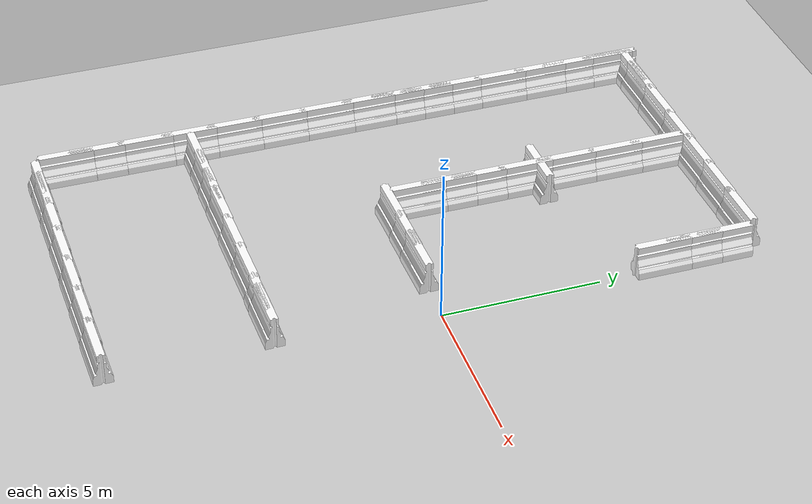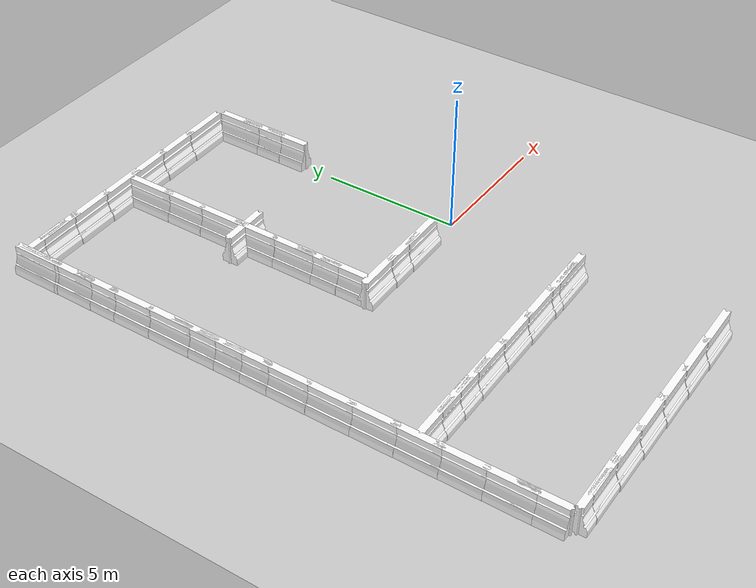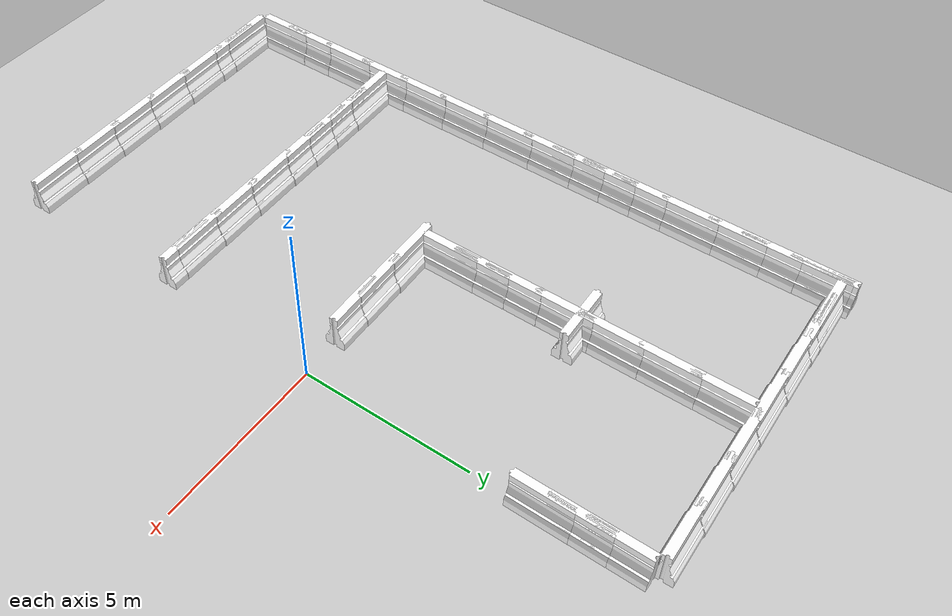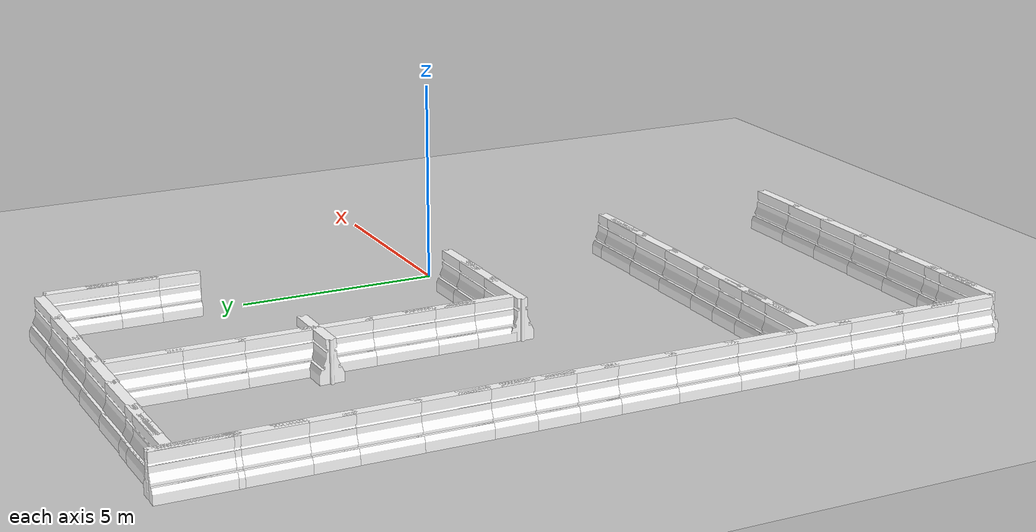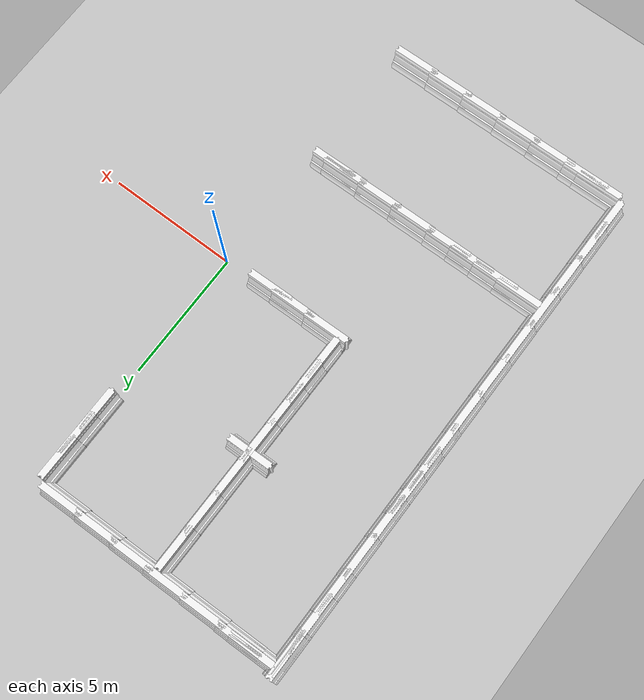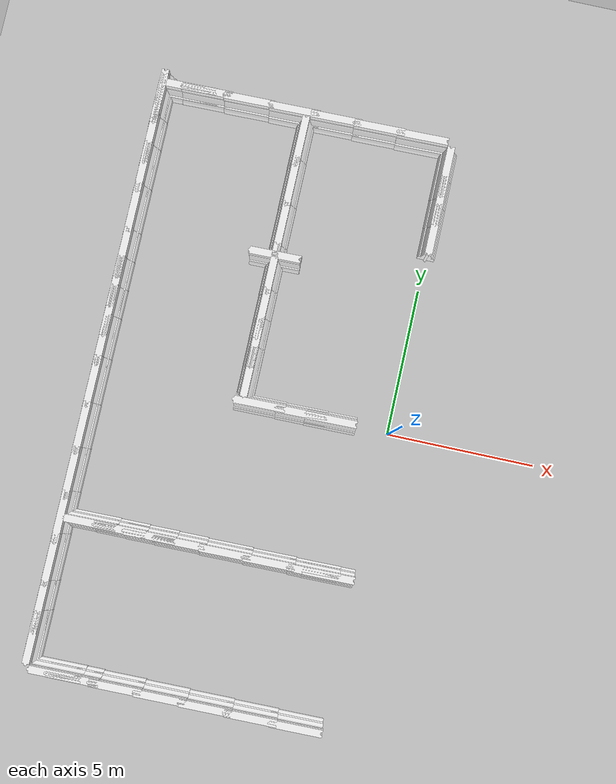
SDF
<sdf version="1.5">
 <world name="my_world">
  <model name="ground_plane">
   <static>1</static>
   <link name="link">
    <collision name="collision">
     <geometry><plane><normal>0 0 1</normal><size>100 100</size></plane></geometry>
     <surface><friction><ode><mu>100</mu><mu2>50</mu2></ode></friction></surface>
    </collision>
    <visual name="visual">
     <cast_shadows>0</cast_shadows>
     <geometry><plane><normal>0 0 1</normal><size>100 100</size></plane></geometry>
     <material>
      <script><uri>file://media/materials/scripts/gazebo.material</uri><name>Gazebo/Grey</name></script>
     </material>
    </visual>
    <velocity_decay><linear>0</linear><angular>0</angular></velocity_decay>
   </link>
  </model>
  <model name="drc_practice_white_jersey_barrier_clone_11_clone_5">
   <static>1</static>
   <link name="link">
    <visual name="visual">
     <geometry>
      <mesh><uri>model://drc_practice_white_jersey_barrier/meshes/jersey_barrier.dae</uri></mesh>
     </geometry>
    </visual>
    <collision name="collision">
     <geometry>
      <mesh><uri>model://drc_practice_white_jersey_barrier/meshes/jersey_barrier.dae</uri></mesh>
     </geometry>
    </collision>
   </link>
   <pose>-1 -10 0 0 0 -1.54936</pose>
  </model>
  <model name="drc_practice_white_jersey_barrier_clone_11_clone_6">
   <static>1</static>
   <link name="link">
    <visual name="visual">
     <geometry>
      <mesh><uri>model://drc_practice_white_jersey_barrier/meshes/jersey_barrier.dae</uri></mesh>
     </geometry>
    </visual>
    <collision name="collision">
     <geometry>
      <mesh><uri>model://drc_practice_white_jersey_barrier/meshes/jersey_barrier.dae</uri></mesh>
     </geometry>
    </collision>
   </link>
   <pose>-2.50949 -10 0 0 0 -1.54936</pose>
  </model>
  <model name="drc_practice_white_jersey_barrier_clone_11_clone_7">
   <static>1</static>
   <link name="link">
    <visual name="visual">
     <geometry>
      <mesh><uri>model://drc_practice_white_jersey_barrier/meshes/jersey_barrier.dae</uri></mesh>
     </geometry>
    </visual>
    <collision name="collision">
     <geometry>
      <mesh><uri>model://drc_practice_white_jersey_barrier/meshes/jersey_barrier.dae</uri></mesh>
     </geometry>
    </collision>
   </link>
   <pose>-4 -10 0 0 0 -1.54936</pose>
  </model>
  <model name="drc_practice_white_jersey_barrier_clone_11_clone_8">
   <static>1</static>
   <link name="link">
    <visual name="visual">
     <geometry>
      <mesh><uri>model://drc_practice_white_jersey_barrier/meshes/jersey_barrier.dae</uri></mesh>
     </geometry>
    </visual>
    <collision name="collision">
     <geometry>
      <mesh><uri>model://drc_practice_white_jersey_barrier/meshes/jersey_barrier.dae</uri></mesh>
     </geometry>
    </collision>
   </link>
   <pose>-5.50758 -10 0 0 0 -1.54936</pose>
  </model>
  <model name="drc_practice_white_jersey_barrier_clone_11_clone_9">
   <static>1</static>
   <link name="link">
    <visual name="visual">
     <geometry>
      <mesh><uri>model://drc_practice_white_jersey_barrier/meshes/jersey_barrier.dae</uri></mesh>
     </geometry>
    </visual>
    <collision name="collision">
     <geometry>
      <mesh><uri>model://drc_practice_white_jersey_barrier/meshes/jersey_barrier.dae</uri></mesh>
     </geometry>
    </collision>
   </link>
   <pose>-7 -10 0 0 0 -1.54936</pose>
  </model>
  <model name="drc_practice_white_jersey_barrier_clone_11_clone_10">
   <static>1</static>
   <link name="link">
    <visual name="visual">
     <geometry>
      <mesh><uri>model://drc_practice_white_jersey_barrier/meshes/jersey_barrier.dae</uri></mesh>
     </geometry>
    </visual>
    <collision name="collision">
     <geometry>
      <mesh><uri>model://drc_practice_white_jersey_barrier/meshes/jersey_barrier.dae</uri></mesh>
     </geometry>
    </collision>
   </link>
   <pose>-8.42092 -10 0 0 0 -1.54936</pose>
  </model>
  <model name="drc_practice_white_jersey_barrier_clone_11_clone_11">
   <static>1</static>
   <link name="link">
    <visual name="visual">
     <geometry>
      <mesh><uri>model://drc_practice_white_jersey_barrier/meshes/jersey_barrier.dae</uri></mesh>
     </geometry>
    </visual>
    <collision name="collision">
     <geometry>
      <mesh><uri>model://drc_practice_white_jersey_barrier/meshes/jersey_barrier.dae</uri></mesh>
     </geometry>
    </collision>
   </link>
   <pose>-9 -10 0 0 0 -1.54936</pose>
  </model>
  <model name="drc_practice_white_jersey_barrier_clone_11_clone_10_clone_clone_5">
   <static>1</static>
   <link name="link">
    <visual name="visual">
     <geometry>
      <mesh><uri>model://drc_practice_white_jersey_barrier/meshes/jersey_barrier.dae</uri></mesh>
     </geometry>
    </visual>
    <collision name="collision">
     <geometry>
      <mesh><uri>model://drc_practice_white_jersey_barrier/meshes/jersey_barrier.dae</uri></mesh>
     </geometry>
    </collision>
   </link>
   <pose>-1 10 0 0 0 -1.54936</pose>
  </model>
  <model name="drc_practice_white_jersey_barrier_clone_11_clone_10_clone_clone_6">
   <static>1</static>
   <link name="link">
    <visual name="visual">
     <geometry>
      <mesh><uri>model://drc_practice_white_jersey_barrier/meshes/jersey_barrier.dae</uri></mesh>
     </geometry>
    </visual>
    <collision name="collision">
     <geometry>
      <mesh><uri>model://drc_practice_white_jersey_barrier/meshes/jersey_barrier.dae</uri></mesh>
     </geometry>
    </collision>
   </link>
   <pose>-2.49689 10 0 0 0 -1.54936</pose>
  </model>
  <model name="drc_practice_white_jersey_barrier_clone_11_clone_10_clone_clone_7">
   <static>1</static>
   <link name="link">
    <visual name="visual">
     <geometry>
      <mesh><uri>model://drc_practice_white_jersey_barrier/meshes/jersey_barrier.dae</uri></mesh>
     </geometry>
    </visual>
    <collision name="collision">
     <geometry>
      <mesh><uri>model://drc_practice_white_jersey_barrier/meshes/jersey_barrier.dae</uri></mesh>
     </geometry>
    </collision>
   </link>
   <pose>-4 10 0 0 0 -1.54936</pose>
  </model>
  <model name="drc_practice_white_jersey_barrier_clone_11_clone_10_clone_clone_8">
   <static>1</static>
   <link name="link">
    <visual name="visual">
     <geometry>
      <mesh><uri>model://drc_practice_white_jersey_barrier/meshes/jersey_barrier.dae</uri></mesh>
     </geometry>
    </visual>
    <collision name="collision">
     <geometry>
      <mesh><uri>model://drc_practice_white_jersey_barrier/meshes/jersey_barrier.dae</uri></mesh>
     </geometry>
    </collision>
   </link>
   <pose>-5.4346 10 0 0 0 -1.54936</pose>
  </model>
  <model name="drc_practice_white_jersey_barrier_clone_11_clone_10_clone_clone_9">
   <static>1</static>
   <link name="link">
    <visual name="visual">
     <geometry>
      <mesh><uri>model://drc_practice_white_jersey_barrier/meshes/jersey_barrier.dae</uri></mesh>
     </geometry>
    </visual>
    <collision name="collision">
     <geometry>
      <mesh><uri>model://drc_practice_white_jersey_barrier/meshes/jersey_barrier.dae</uri></mesh>
     </geometry>
    </collision>
   </link>
   <pose>-7 10 0 0 0 -1.54936</pose>
  </model>
  <model name="drc_practice_white_jersey_barrier_clone_11_clone_10_clone_clone_10">
   <static>1</static>
   <link name="link">
    <visual name="visual">
     <geometry>
      <mesh><uri>model://drc_practice_white_jersey_barrier/meshes/jersey_barrier.dae</uri></mesh>
     </geometry>
    </visual>
    <collision name="collision">
     <geometry>
      <mesh><uri>model://drc_practice_white_jersey_barrier/meshes/jersey_barrier.dae</uri></mesh>
     </geometry>
    </collision>
   </link>
   <pose>-8.46669 10 0 0 0 -1.54936</pose>
  </model>
  <model name="drc_practice_white_jersey_barrier_clone_11_clone_10_clone_clone_11">
   <static>1</static>
   <link name="link">
    <visual name="visual">
     <geometry>
      <mesh><uri>model://drc_practice_white_jersey_barrier/meshes/jersey_barrier.dae</uri></mesh>
     </geometry>
    </visual>
    <collision name="collision">
     <geometry>
      <mesh><uri>model://drc_practice_white_jersey_barrier/meshes/jersey_barrier.dae</uri></mesh>
     </geometry>
    </collision>
   </link>
   <pose>-9 10 0 0 0 -1.54936</pose>
  </model>
  <model name="drc_practice_white_jersey_barrier_clone_12">
   <static>1</static>
   <link name="link">
    <visual name="visual">
     <geometry>
      <mesh><uri>model://drc_practice_white_jersey_barrier/meshes/jersey_barrier.dae</uri></mesh>
     </geometry>
    </visual>
    <collision name="collision">
     <geometry>
      <mesh><uri>model://drc_practice_white_jersey_barrier/meshes/jersey_barrier.dae</uri></mesh>
     </geometry>
    </collision>
   </link>
   <pose>-10 9.41946 0 0 -0 0</pose>
  </model>
  <model name="drc_practice_white_jersey_barrier_clone_13">
   <static>1</static>
   <link name="link">
    <visual name="visual">
     <geometry>
      <mesh><uri>model://drc_practice_white_jersey_barrier/meshes/jersey_barrier.dae</uri></mesh>
     </geometry>
    </visual>
    <collision name="collision">
     <geometry>
      <mesh><uri>model://drc_practice_white_jersey_barrier/meshes/jersey_barrier.dae</uri></mesh>
     </geometry>
    </collision>
   </link>
   <pose>-10 9.55285 0 0 -0 0</pose>
  </model>
  <model name="drc_practice_white_jersey_barrier_clone_14">
   <static>1</static>
   <link name="link">
    <visual name="visual">
     <geometry>
      <mesh><uri>model://drc_practice_white_jersey_barrier/meshes/jersey_barrier.dae</uri></mesh>
     </geometry>
    </visual>
    <collision name="collision">
     <geometry>
      <mesh><uri>model://drc_practice_white_jersey_barrier/meshes/jersey_barrier.dae</uri></mesh>
     </geometry>
    </collision>
   </link>
   <pose>-10 8 0 0 -0 0</pose>
  </model>
  <model name="drc_practice_white_jersey_barrier_clone_15">
   <static>1</static>
   <link name="link">
    <visual name="visual">
     <geometry>
      <mesh><uri>model://drc_practice_white_jersey_barrier/meshes/jersey_barrier.dae</uri></mesh>
     </geometry>
    </visual>
    <collision name="collision">
     <geometry>
      <mesh><uri>model://drc_practice_white_jersey_barrier/meshes/jersey_barrier.dae</uri></mesh>
     </geometry>
    </collision>
   </link>
   <pose>-10 7 0 0 -0 0</pose>
  </model>
  <model name="drc_practice_white_jersey_barrier_clone_16">
   <static>1</static>
   <link name="link">
    <visual name="visual">
     <geometry>
      <mesh><uri>model://drc_practice_white_jersey_barrier/meshes/jersey_barrier.dae</uri></mesh>
     </geometry>
    </visual>
    <collision name="collision">
     <geometry>
      <mesh><uri>model://drc_practice_white_jersey_barrier/meshes/jersey_barrier.dae</uri></mesh>
     </geometry>
    </collision>
   </link>
   <pose>0 9 0 0 -0 0</pose>
  </model>
  <model name="drc_practice_white_jersey_barrier_clone_17">
   <static>1</static>
   <link name="link">
    <visual name="visual">
     <geometry>
      <mesh><uri>model://drc_practice_white_jersey_barrier/meshes/jersey_barrier.dae</uri></mesh>
     </geometry>
    </visual>
    <collision name="collision">
     <geometry>
      <mesh><uri>model://drc_practice_white_jersey_barrier/meshes/jersey_barrier.dae</uri></mesh>
     </geometry>
    </collision>
   </link>
   <pose>0 8 0 0 -0 0</pose>
  </model>
  <model name="drc_practice_white_jersey_barrier_clone_18">
   <static>1</static>
   <link name="link">
    <visual name="visual">
     <geometry>
      <mesh><uri>model://drc_practice_white_jersey_barrier/meshes/jersey_barrier.dae</uri></mesh>
     </geometry>
    </visual>
    <collision name="collision">
     <geometry>
      <mesh><uri>model://drc_practice_white_jersey_barrier/meshes/jersey_barrier.dae</uri></mesh>
     </geometry>
    </collision>
   </link>
   <pose>0 7 0 0 -0 0</pose>
  </model>
  <model name="drc_practice_white_jersey_barrier_clone_19">
   <static>1</static>
   <link name="link">
    <visual name="visual">
     <geometry>
      <mesh><uri>model://drc_practice_white_jersey_barrier/meshes/jersey_barrier.dae</uri></mesh>
     </geometry>
    </visual>
    <collision name="collision">
     <geometry>
      <mesh><uri>model://drc_practice_white_jersey_barrier/meshes/jersey_barrier.dae</uri></mesh>
     </geometry>
    </collision>
   </link>
   <pose>-10 5.57744 0 0 -0 0</pose>
  </model>
  <model name="drc_practice_white_jersey_barrier_clone_20">
   <static>1</static>
   <link name="link">
    <visual name="visual">
     <geometry>
      <mesh><uri>model://drc_practice_white_jersey_barrier/meshes/jersey_barrier.dae</uri></mesh>
     </geometry>
    </visual>
    <collision name="collision">
     <geometry>
      <mesh><uri>model://drc_practice_white_jersey_barrier/meshes/jersey_barrier.dae</uri></mesh>
     </geometry>
    </collision>
   </link>
   <pose>-10 4 0 0 -0 0</pose>
  </model>
  <model name="drc_practice_white_jersey_barrier_clone_21">
   <static>1</static>
   <link name="link">
    <visual name="visual">
     <geometry>
      <mesh><uri>model://drc_practice_white_jersey_barrier/meshes/jersey_barrier.dae</uri></mesh>
     </geometry>
    </visual>
    <collision name="collision">
     <geometry>
      <mesh><uri>model://drc_practice_white_jersey_barrier/meshes/jersey_barrier.dae</uri></mesh>
     </geometry>
    </collision>
   </link>
   <pose>-10 3 0 0 -0 0</pose>
  </model>
  <model name="drc_practice_white_jersey_barrier_clone_22">
   <static>1</static>
   <link name="link">
    <visual name="visual">
     <geometry>
      <mesh><uri>model://drc_practice_white_jersey_barrier/meshes/jersey_barrier.dae</uri></mesh>
     </geometry>
    </visual>
    <collision name="collision">
     <geometry>
      <mesh><uri>model://drc_practice_white_jersey_barrier/meshes/jersey_barrier.dae</uri></mesh>
     </geometry>
    </collision>
   </link>
   <pose>-10 2 0 0 -0 0</pose>
  </model>
  <model name="drc_practice_white_jersey_barrier_clone_23">
   <static>1</static>
   <link name="link">
    <visual name="visual">
     <geometry>
      <mesh><uri>model://drc_practice_white_jersey_barrier/meshes/jersey_barrier.dae</uri></mesh>
     </geometry>
    </visual>
    <collision name="collision">
     <geometry>
      <mesh><uri>model://drc_practice_white_jersey_barrier/meshes/jersey_barrier.dae</uri></mesh>
     </geometry>
    </collision>
   </link>
   <pose>-10 1 0 0 -0 0</pose>
  </model>
  <model name="drc_practice_white_jersey_barrier_clone_24">
   <static>1</static>
   <link name="link">
    <visual name="visual">
     <geometry>
      <mesh><uri>model://drc_practice_white_jersey_barrier/meshes/jersey_barrier.dae</uri></mesh>
     </geometry>
    </visual>
    <collision name="collision">
     <geometry>
      <mesh><uri>model://drc_practice_white_jersey_barrier/meshes/jersey_barrier.dae</uri></mesh>
     </geometry>
    </collision>
   </link>
   <pose>-10 -0.423552 0 0 -0 0</pose>
  </model>
  <model name="drc_practice_white_jersey_barrier_clone_25">
   <static>1</static>
   <link name="link">
    <visual name="visual">
     <geometry>
      <mesh><uri>model://drc_practice_white_jersey_barrier/meshes/jersey_barrier.dae</uri></mesh>
     </geometry>
    </visual>
    <collision name="collision">
     <geometry>
      <mesh><uri>model://drc_practice_white_jersey_barrier/meshes/jersey_barrier.dae</uri></mesh>
     </geometry>
    </collision>
   </link>
   <pose>-10 -2 0 0 -0 0</pose>
  </model>
  <model name="drc_practice_white_jersey_barrier_clone_26">
   <static>1</static>
   <link name="link">
    <visual name="visual">
     <geometry>
      <mesh><uri>model://drc_practice_white_jersey_barrier/meshes/jersey_barrier.dae</uri></mesh>
     </geometry>
    </visual>
    <collision name="collision">
     <geometry>
      <mesh><uri>model://drc_practice_white_jersey_barrier/meshes/jersey_barrier.dae</uri></mesh>
     </geometry>
    </collision>
   </link>
   <pose>-10 -3.51622 0 0 -0 0</pose>
  </model>
  <model name="drc_practice_white_jersey_barrier_clone_27">
   <static>1</static>
   <link name="link">
    <visual name="visual">
     <geometry>
      <mesh><uri>model://drc_practice_white_jersey_barrier/meshes/jersey_barrier.dae</uri></mesh>
     </geometry>
    </visual>
    <collision name="collision">
     <geometry>
      <mesh><uri>model://drc_practice_white_jersey_barrier/meshes/jersey_barrier.dae</uri></mesh>
     </geometry>
    </collision>
   </link>
   <pose>-10 -5 0 0 -0 0</pose>
  </model>
  <model name="drc_practice_white_jersey_barrier_clone_28">
   <static>1</static>
   <link name="link">
    <visual name="visual">
     <geometry>
      <mesh><uri>model://drc_practice_white_jersey_barrier/meshes/jersey_barrier.dae</uri></mesh>
     </geometry>
    </visual>
    <collision name="collision">
     <geometry>
      <mesh><uri>model://drc_practice_white_jersey_barrier/meshes/jersey_barrier.dae</uri></mesh>
     </geometry>
    </collision>
   </link>
   <pose>-10 -6.4315 0 0 -0 0</pose>
  </model>
  <model name="drc_practice_white_jersey_barrier_clone_29">
   <static>1</static>
   <link name="link">
    <visual name="visual">
     <geometry>
      <mesh><uri>model://drc_practice_white_jersey_barrier/meshes/jersey_barrier.dae</uri></mesh>
     </geometry>
    </visual>
    <collision name="collision">
     <geometry>
      <mesh><uri>model://drc_practice_white_jersey_barrier/meshes/jersey_barrier.dae</uri></mesh>
     </geometry>
    </collision>
   </link>
   <pose>-10 -8 0 0 -0 0</pose>
  </model>
  <model name="drc_practice_white_jersey_barrier_clone_30">
   <static>1</static>
   <link name="link">
    <visual name="visual">
     <geometry>
      <mesh><uri>model://drc_practice_white_jersey_barrier/meshes/jersey_barrier.dae</uri></mesh>
     </geometry>
    </visual>
    <collision name="collision">
     <geometry>
      <mesh><uri>model://drc_practice_white_jersey_barrier/meshes/jersey_barrier.dae</uri></mesh>
     </geometry>
    </collision>
   </link>
   <pose>-10 -9 0 0 -0 0</pose>
  </model>
  <model name="drc_practice_white_jersey_barrier_clone_31">
   <static>1</static>
   <link name="link">
    <visual name="visual">
     <geometry>
      <mesh><uri>model://drc_practice_white_jersey_barrier/meshes/jersey_barrier.dae</uri></mesh>
     </geometry>
    </visual>
    <collision name="collision">
     <geometry>
      <mesh><uri>model://drc_practice_white_jersey_barrier/meshes/jersey_barrier.dae</uri></mesh>
     </geometry>
    </collision>
   </link>
   <pose>-5 9 0 0 -0 0</pose>
  </model>
  <model name="drc_practice_white_jersey_barrier_clone_13_clone">
   <static>1</static>
   <link name="link">
    <visual name="visual">
     <geometry>
      <mesh><uri>model://drc_practice_white_jersey_barrier/meshes/jersey_barrier.dae</uri></mesh>
     </geometry>
    </visual>
    <collision name="collision">
     <geometry>
      <mesh><uri>model://drc_practice_white_jersey_barrier/meshes/jersey_barrier.dae</uri></mesh>
     </geometry>
    </collision>
   </link>
   <pose>-5 7.58802 0 0 -0 0</pose>
  </model>
  <model name="drc_practice_white_jersey_barrier_clone_13_clone_0">
   <static>1</static>
   <link name="link">
    <visual name="visual">
     <geometry>
      <mesh><uri>model://drc_practice_white_jersey_barrier/meshes/jersey_barrier.dae</uri></mesh>
     </geometry>
    </visual>
    <collision name="collision">
     <geometry>
      <mesh><uri>model://drc_practice_white_jersey_barrier/meshes/jersey_barrier.dae</uri></mesh>
     </geometry>
    </collision>
   </link>
   <pose>-5 6 0 0 -0 0</pose>
  </model>
  <model name="drc_practice_white_jersey_barrier_clone_13_clone_1">
   <static>1</static>
   <link name="link">
    <visual name="visual">
     <geometry>
      <mesh><uri>model://drc_practice_white_jersey_barrier/meshes/jersey_barrier.dae</uri></mesh>
     </geometry>
    </visual>
    <collision name="collision">
     <geometry>
      <mesh><uri>model://drc_practice_white_jersey_barrier/meshes/jersey_barrier.dae</uri></mesh>
     </geometry>
    </collision>
   </link>
   <pose>-5 4.5466 0 0 -0 0</pose>
  </model>
  <model name="drc_practice_white_jersey_barrier_clone_13_clone_2">
   <static>1</static>
   <link name="link">
    <visual name="visual">
     <geometry>
      <mesh><uri>model://drc_practice_white_jersey_barrier/meshes/jersey_barrier.dae</uri></mesh>
     </geometry>
    </visual>
    <collision name="collision">
     <geometry>
      <mesh><uri>model://drc_practice_white_jersey_barrier/meshes/jersey_barrier.dae</uri></mesh>
     </geometry>
    </collision>
   </link>
   <pose>-5 3 0 0 -0 0</pose>
  </model>
  <model name="drc_practice_white_jersey_barrier_clone_13_clone_3">
   <static>1</static>
   <link name="link">
    <visual name="visual">
     <geometry>
      <mesh><uri>model://drc_practice_white_jersey_barrier/meshes/jersey_barrier.dae</uri></mesh>
     </geometry>
    </visual>
    <collision name="collision">
     <geometry>
      <mesh><uri>model://drc_practice_white_jersey_barrier/meshes/jersey_barrier.dae</uri></mesh>
     </geometry>
    </collision>
   </link>
   <pose>-5 2 0 0 -0 0</pose>
  </model>
  <model name="drc_practice_white_jersey_barrier_clone_13_clone_4">
   <static>1</static>
   <link name="link">
    <visual name="visual">
     <geometry>
      <mesh><uri>model://drc_practice_white_jersey_barrier/meshes/jersey_barrier.dae</uri></mesh>
     </geometry>
    </visual>
    <collision name="collision">
     <geometry>
      <mesh><uri>model://drc_practice_white_jersey_barrier/meshes/jersey_barrier.dae</uri></mesh>
     </geometry>
    </collision>
   </link>
   <pose>-5 1 0 0 -0 0</pose>
  </model>
  <model name="drc_practice_white_jersey_barrier_clone_11_clone_10_clone_clone_12_clone">
   <static>1</static>
   <link name="link">
    <visual name="visual">
     <geometry>
      <mesh><uri>model://drc_practice_white_jersey_barrier/meshes/jersey_barrier.dae</uri></mesh>
     </geometry>
    </visual>
    <collision name="collision">
     <geometry>
      <mesh><uri>model://drc_practice_white_jersey_barrier/meshes/jersey_barrier.dae</uri></mesh>
     </geometry>
    </collision>
   </link>
   <pose>-9 -5 0 0 0 -1.54936</pose>
  </model>
  <model name="drc_practice_white_jersey_barrier_clone_11_clone_10_clone_clone_12_clone_0">
   <static>1</static>
   <link name="link">
    <visual name="visual">
     <geometry>
      <mesh><uri>model://drc_practice_white_jersey_barrier/meshes/jersey_barrier.dae</uri></mesh>
     </geometry>
    </visual>
    <collision name="collision">
     <geometry>
      <mesh><uri>model://drc_practice_white_jersey_barrier/meshes/jersey_barrier.dae</uri></mesh>
     </geometry>
    </collision>
   </link>
   <pose>-7 -5 0 0 0 -1.54936</pose>
  </model>
  <model name="drc_practice_white_jersey_barrier_clone_11_clone_10_clone_clone_12_clone_1">
   <static>1</static>
   <link name="link">
    <visual name="visual">
     <geometry>
      <mesh><uri>model://drc_practice_white_jersey_barrier/meshes/jersey_barrier.dae</uri></mesh>
     </geometry>
    </visual>
    <collision name="collision">
     <geometry>
      <mesh><uri>model://drc_practice_white_jersey_barrier/meshes/jersey_barrier.dae</uri></mesh>
     </geometry>
    </collision>
   </link>
   <pose>-8 -5 0 0 0 -1.54936</pose>
  </model>
  <model name="drc_practice_white_jersey_barrier_clone_11_clone_10_clone_clone_12_clone_2">
   <static>1</static>
   <link name="link">
    <visual name="visual">
     <geometry>
      <mesh><uri>model://drc_practice_white_jersey_barrier/meshes/jersey_barrier.dae</uri></mesh>
     </geometry>
    </visual>
    <collision name="collision">
     <geometry>
      <mesh><uri>model://drc_practice_white_jersey_barrier/meshes/jersey_barrier.dae</uri></mesh>
     </geometry>
    </collision>
   </link>
   <pose>-6 -5 0 0 0 -1.54936</pose>
  </model>
  <model name="drc_practice_white_jersey_barrier_clone_11_clone_10_clone_clone_12_clone_3">
   <static>1</static>
   <link name="link">
    <visual name="visual">
     <geometry>
      <mesh><uri>model://drc_practice_white_jersey_barrier/meshes/jersey_barrier.dae</uri></mesh>
     </geometry>
    </visual>
    <collision name="collision">
     <geometry>
      <mesh><uri>model://drc_practice_white_jersey_barrier/meshes/jersey_barrier.dae</uri></mesh>
     </geometry>
    </collision>
   </link>
   <pose>-4.47055 -5 0 0 0 -1.54936</pose>
  </model>
  <model name="drc_practice_white_jersey_barrier_clone_11_clone_10_clone_clone_12_clone_4">
   <static>1</static>
   <link name="link">
    <visual name="visual">
     <geometry>
      <mesh><uri>model://drc_practice_white_jersey_barrier/meshes/jersey_barrier.dae</uri></mesh>
     </geometry>
    </visual>
    <collision name="collision">
     <geometry>
      <mesh><uri>model://drc_practice_white_jersey_barrier/meshes/jersey_barrier.dae</uri></mesh>
     </geometry>
    </collision>
   </link>
   <pose>-3 -5 0 0 0 -1.54936</pose>
  </model>
  <model name="drc_practice_white_jersey_barrier_clone_11_clone_10_clone_clone_12_clone_5">
   <static>1</static>
   <link name="link">
    <visual name="visual">
     <geometry>
      <mesh><uri>model://drc_practice_white_jersey_barrier/meshes/jersey_barrier.dae</uri></mesh>
     </geometry>
    </visual>
    <collision name="collision">
     <geometry>
      <mesh><uri>model://drc_practice_white_jersey_barrier/meshes/jersey_barrier.dae</uri></mesh>
     </geometry>
    </collision>
   </link>
   <pose>-1.48579 -5 0 0 0 -1.54936</pose>
  </model>
  <model name="drc_practice_white_jersey_barrier_clone_11_clone_10_clone_clone_12_clone_6">
   <static>1</static>
   <link name="link">
    <visual name="visual">
     <geometry>
      <mesh><uri>model://drc_practice_white_jersey_barrier/meshes/jersey_barrier.dae</uri></mesh>
     </geometry>
    </visual>
    <collision name="collision">
     <geometry>
      <mesh><uri>model://drc_practice_white_jersey_barrier/meshes/jersey_barrier.dae</uri></mesh>
     </geometry>
    </collision>
   </link>
   <pose>-1 -5 0 0 0 -1.54936</pose>
  </model>
  <model name="drc_practice_white_jersey_barrier_clone_11_clone_10_clone_clone_12_clone_7">
   <static>1</static>
   <link name="link">
    <visual name="visual">
     <geometry>
      <mesh><uri>model://drc_practice_white_jersey_barrier/meshes/jersey_barrier.dae</uri></mesh>
     </geometry>
    </visual>
    <collision name="collision">
     <geometry>
      <mesh><uri>model://drc_practice_white_jersey_barrier/meshes/jersey_barrier.dae</uri></mesh>
     </geometry>
    </collision>
   </link>
   <pose>-4.42816 0 0 0 0 -1.54936</pose>
  </model>
  <model name="drc_practice_white_jersey_barrier_clone_11_clone_10_clone_clone_12_clone_8">
   <static>1</static>
   <link name="link">
    <visual name="visual">
     <geometry>
      <mesh><uri>model://drc_practice_white_jersey_barrier/meshes/jersey_barrier.dae</uri></mesh>
     </geometry>
    </visual>
    <collision name="collision">
     <geometry>
      <mesh><uri>model://drc_practice_white_jersey_barrier/meshes/jersey_barrier.dae</uri></mesh>
     </geometry>
    </collision>
   </link>
   <pose>-3 0 0 0 0 -1.54936</pose>
  </model>
  <model name="drc_practice_white_jersey_barrier_clone_11_clone_10_clone_clone_12_clone_9">
   <static>1</static>
   <link name="link">
    <visual name="visual">
     <geometry>
      <mesh><uri>model://drc_practice_white_jersey_barrier/meshes/jersey_barrier.dae</uri></mesh>
     </geometry>
    </visual>
    <collision name="collision">
     <geometry>
      <mesh><uri>model://drc_practice_white_jersey_barrier/meshes/jersey_barrier.dae</uri></mesh>
     </geometry>
    </collision>
   </link>
   <pose>-2 0 0 0 0 -1.54936</pose>
  </model>
  <model name="drc_practice_white_jersey_barrier_clone_11_clone_10_clone_clone_12_clone_11">
   <static>1</static>
   <link name="link">
    <visual name="visual">
     <geometry>
      <mesh><uri>model://drc_practice_white_jersey_barrier/meshes/jersey_barrier.dae</uri></mesh>
     </geometry>
    </visual>
    <collision name="collision">
     <geometry>
      <mesh><uri>model://drc_practice_white_jersey_barrier/meshes/jersey_barrier.dae</uri></mesh>
     </geometry>
    </collision>
   </link>
   <pose>-5 5 0 0 0 -1.54936</pose>
  </model>
 </world>
</sdf>
